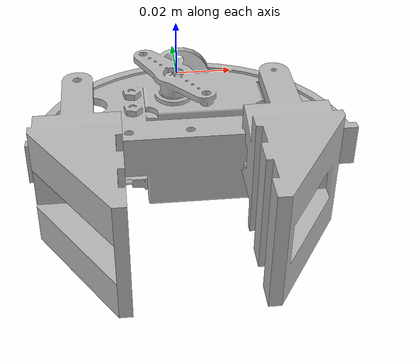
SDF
<?xml version="1.0"?>
<sdf version='1.7'>
  <model name='gripper1'>
    <link name='base_link'>
      <inertial>
        <pose>0.001654 -0.029913 -0.001386 0 0 0</pose>
        <mass>0.01</mass>
        <inertia>
          <ixx>4.11249e-05</ixx>
          <ixy>8.0148e-07</ixy>
          <ixz>2.68911e-08</ixz>
          <iyy>0.000111475</iyy>
          <iyz>-6.74462e-07</iyz>
          <izz>0.000142498</izz>
        </inertia>
      </inertial>
      <collision name='base_link_collision'>
        <pose>0 0 0 0 0 0</pose>
        <geometry>
          <mesh>
            <scale>1 1 1</scale>
            <uri>model://gripper1/meshes/base_link.STL</uri>
          </mesh>
        </geometry>
      </collision>
      <visual name='base_link_visual'>
        <pose>0 0 0 0 0 0</pose>
        <geometry>
          <mesh>
            <scale>1 1 1</scale>
            <uri>model://gripper1/meshes/base_link.STL</uri>
          </mesh>
        </geometry>
      </visual>
    </link>

    <joint name='left_joint' type='prismatic'>
      <pose relative_to='base_link'>-0.051103 -0.052 -0.0065 0 0 0</pose>
      <parent>base_link</parent>
      <child>left_link</child>
      <axis>
        <xyz expressed_in='base_link'>-1 0 0</xyz>
        <limit>
          <lower>-0.03</lower>
          <upper>0.03</upper>
          <effort>50</effort>
          <velocity>0.1</velocity>
        </limit>
        <dynamics>
          <spring_reference>0</spring_reference>
          <spring_stiffness>0</spring_stiffness>
          <damping>1.0</damping>
          <friction>0.1</friction>
        </dynamics>
      </axis>
    </joint>

    <link name='left_link'>
      <pose relative_to='left_joint'>0 0 0 0 0 0</pose>
      <inertial>
        <pose>0.026892 -0.01407 0.008606 0 0 0</pose>
        <mass>0.01</mass>
        <inertia>
          <ixx>9.6439e-05</ixx>
          <ixy>3.46376e-06</ixy>
          <ixz>3.80734e-07</ixz>
          <iyy>4.79336e-05</iyy>
          <iyz>-8.70306e-06</iyz>
          <izz>7.99202e-05</izz>
        </inertia>
      </inertial>
      <collision name='left_link_collision'>
        <pose>0 0 0 0 0 0</pose>
        <geometry>
          <mesh>
            <scale>1 1 1</scale>
            <uri>model://gripper1/meshes/left_link.STL</uri>
          </mesh>
        </geometry>
        <surface>
          <friction>
            <ode>
              <mu>30</mu>
              <mu2>30</mu2>
            </ode>
          </friction>
        </surface>
      </collision>
      <visual name='left_link_visual'>
        <pose>0 0 0 0 0 0</pose>
        <geometry>
          <mesh>
            <scale>1 1 1</scale>
            <uri>model://gripper1/meshes/left_link.STL</uri>
          </mesh>
        </geometry>
      </visual>
    </link>

    <joint name='right_joint' type='prismatic'>
      <pose relative_to='base_link'>0.052897 -0.052 0.0075 3.14159 0 3.14159</pose>
      <parent>base_link</parent>
      <child>right_link</child>
      <axis>
        <xyz expressed_in='base_link'>1 0 0</xyz>
        <limit>
          <lower>-0.03</lower>
          <upper>0.03</upper>
          <effort>50</effort>
          <velocity>0.1</velocity>
        </limit>
        <dynamics>
          <spring_reference>0</spring_reference>
          <spring_stiffness>0</spring_stiffness>
          <damping>1.0</damping>
          <friction>0.1</friction>
        </dynamics>
      </axis>
    </joint>

    <link name='right_link'>
      <pose relative_to='right_joint'>0 0 0 0 0 0</pose>
      <inertial>
        <pose>0.025334 -0.016463 0.005554 0 0 0</pose>
        <mass>0.01</mass>
        <inertia>
          <ixx>6.82429e-05</ixx>
          <ixy>8.57233e-06</ixy>
          <ixz>-7.94682e-07</ixz>
          <iyy>3.63588e-05</iyy>
          <iyz>5.33025e-06</iyz>
          <izz>5.21112e-05</izz>
        </inertia>
      </inertial>
      <collision name='right_link_collision'>
        <pose>0 0 0 0 0 0</pose>
        <geometry>
          <mesh>
            <scale>1 1 1</scale>
            <uri>model://gripper1/meshes/right_link.STL</uri>
          </mesh>
        </geometry>
        <surface>
          <friction>
            <ode>
              <mu>30</mu>
              <mu2>30</mu2>
            </ode>
          </friction>
        </surface>
      </collision>
      <visual name='right_link_visual'>
        <pose>0 0 0 0 0 0</pose>
        <geometry>
          <mesh>
            <scale>1 1 1</scale>
            <uri>model://gripper1/meshes/right_link.STL</uri>
          </mesh>
        </geometry>
      </visual>
    </link>

    <plugin filename="gz-sim-joint-state-publisher-system" name="gz::sim::systems::JointStatePublisher">
      <topic>/gripper1/joint_state</topic>
      <joint_name>left_joint</joint_name>
      <joint_name>right_joint</joint_name>
    </plugin>

    <plugin filename="gz-sim-joint-position-controller-system" name="gz::sim::systems::JointPositionController">
      <joint_name>left_joint</joint_name>
      <joint_index>0</joint_index>
      <topic>/joint/gripper1_1/position_cmd</topic>
      <p_gain>10</p_gain>
      <i_gain>0</i_gain>
      <d_gain>0.1</d_gain>
      <cmd_min>-50</cmd_min>
      <cmd_max>50</cmd_max>
      <initial_position>0</initial_position>
    </plugin>

    <plugin filename="gz-sim-joint-position-controller-system" name="gz::sim::systems::JointPositionController">
      <joint_name>right_joint</joint_name>
      <joint_index>0</joint_index>
      <topic>/joint/gripper1_2/position_cmd</topic>
      <p_gain>10</p_gain>
      <i_gain>0</i_gain>
      <d_gain>0.1</d_gain>
      <cmd_min>-50</cmd_min>
      <cmd_max>50</cmd_max>
      <initial_position>0</initial_position>
    </plugin>

    <plugin filename="gz-sim-pose-publisher-system" name="gz::sim::systems::PosePublisher">
      <publish_link_pose>true</publish_link_pose>
      <publish_visual_pose>false</publish_visual_pose>
      <publish_collision_pose>false</publish_collision_pose>
      <publish_sensor_pose>false</publish_sensor_pose>
      <publish_model_pose>false</publish_model_pose>
      <use_pose_vector_msg>true</use_pose_vector_msg>
      <update_frequency>50</update_frequency>
    </plugin>
  </model>
</sdf>
